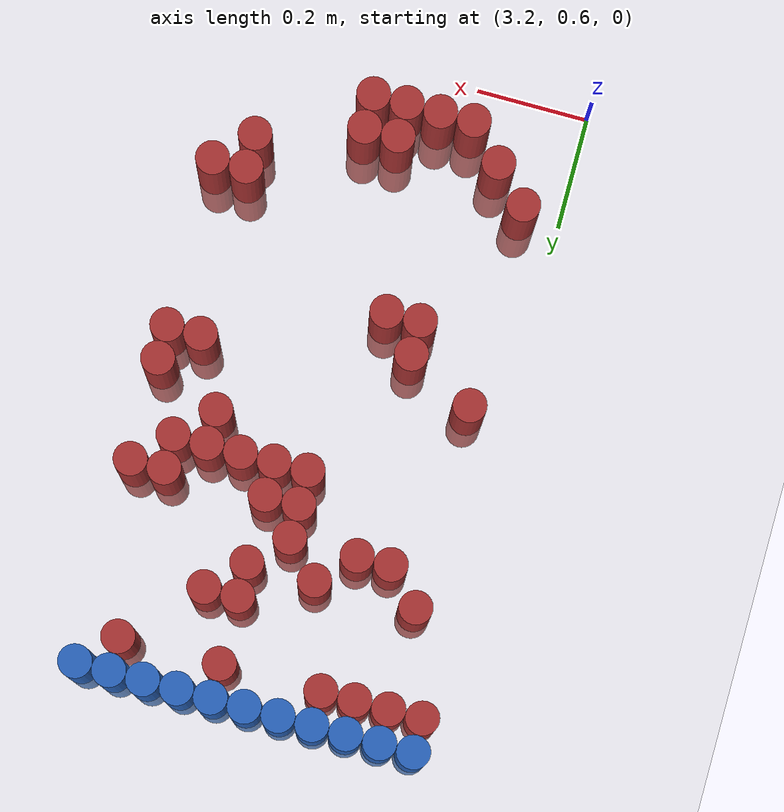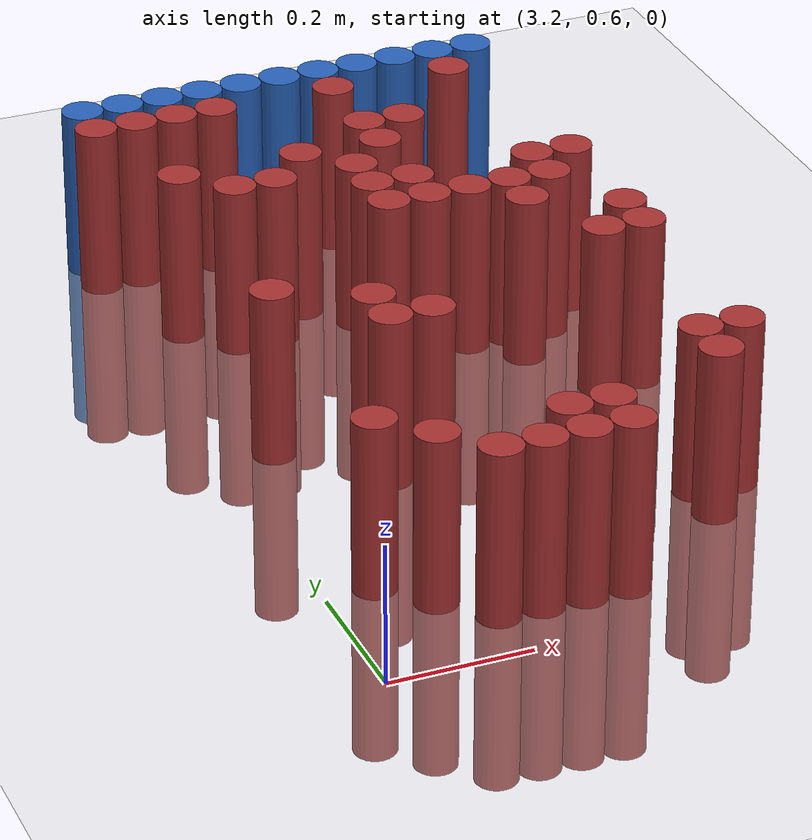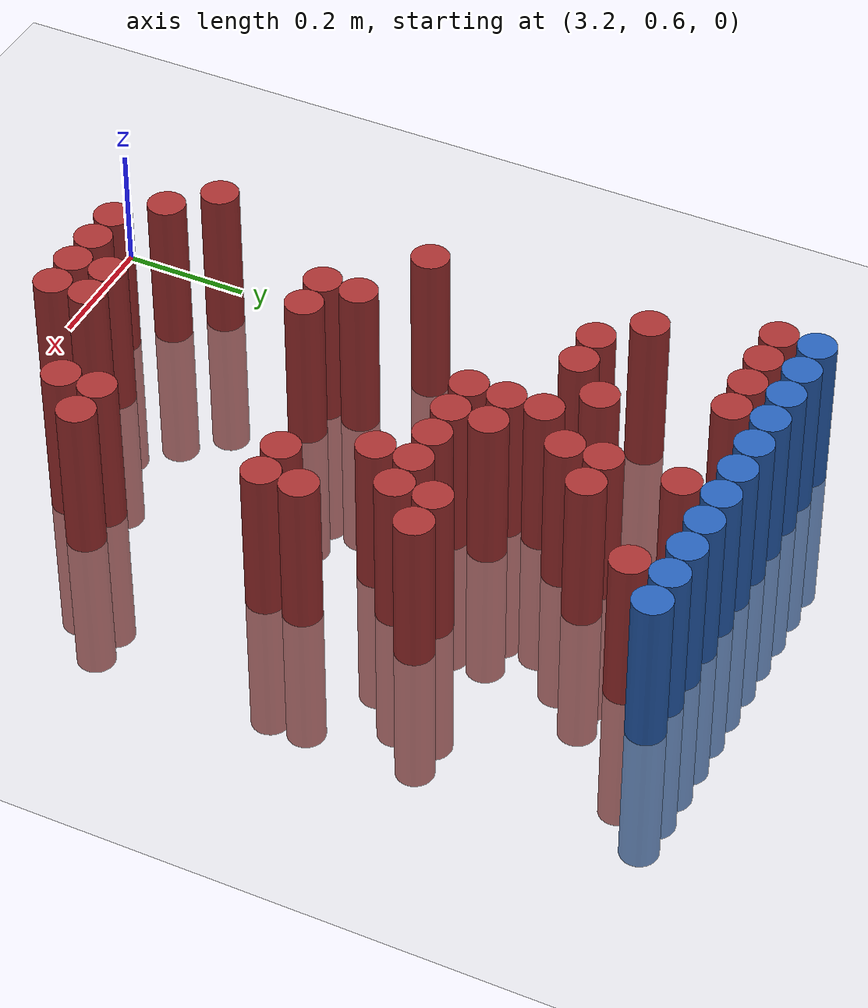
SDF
<sdf version="1.6">
 <world name="default">
  <model name="ground_plane">
   <static>1</static>
   <link name="link">
    <collision name="collision">
     <geometry><plane><normal>0 0 1</normal><size>100 100</size></plane></geometry>
     <surface><friction><ode><mu>100</mu><mu2>50</mu2></ode></friction></surface>
    </collision>
    <visual name="visual">
     <cast_shadows>0</cast_shadows>
     <geometry><plane><normal>0 0 1</normal><size>100 100</size></plane></geometry>
     <material>
      <script><uri>file://media/materials/scripts/gazebo.material</uri><name>Gazebo/Grey</name></script>
     </material>
    </visual>
   </link>
  </model>
  <model name="unit_cylinder_114">
   <static>1</static>
   <pose>3.210000 1.770000 0.000000 0.000000 0.000000 0.000000</pose>
   <link name="link">
    <inertial>
     <mass>1</mass>
     <inertia><ixx>0.145833</ixx><ixy>0</ixy><ixz>0</ixz><iyy>0.145833</iyy><iyz>0</iyz><izz>0.125</izz></inertia>
    </inertial>
    <collision name="collision">
     <geometry><cylinder><radius>0.030000</radius><length>0.5</length></cylinder></geometry>
    </collision>
    <visual name="visual">
     <geometry><cylinder><radius>0.030000</radius><length>0.5</length></cylinder></geometry>
     <material>
      <ambient>0.152000 0.379000 0.720000 1</ambient>
      <diffuse>0.152000 0.379000 0.720000 1</diffuse>
     </material>
     <material>
      <script><name>Gazebo/Grey</name><uri>file://media/materials/scripts/gazebo.material</uri></script>
     </material>
    </visual>
   </link>
  </model>
  <model name="unit_cylinder_115">
   <static>1</static>
   <pose>3.270000 1.770000 0.000000 0.000000 0.000000 0.000000</pose>
   <link name="link">
    <inertial>
     <mass>1</mass>
     <inertia><ixx>0.145833</ixx><ixy>0</ixy><ixz>0</ixz><iyy>0.145833</iyy><iyz>0</iyz><izz>0.125</izz></inertia>
    </inertial>
    <collision name="collision">
     <geometry><cylinder><radius>0.030000</radius><length>0.5</length></cylinder></geometry>
    </collision>
    <visual name="visual">
     <geometry><cylinder><radius>0.030000</radius><length>0.5</length></cylinder></geometry>
     <material>
      <ambient>0.152000 0.379000 0.720000 1</ambient>
      <diffuse>0.152000 0.379000 0.720000 1</diffuse>
     </material>
     <material>
      <script><name>Gazebo/Grey</name><uri>file://media/materials/scripts/gazebo.material</uri></script>
     </material>
    </visual>
   </link>
  </model>
  <model name="unit_cylinder_116">
   <static>1</static>
   <pose>3.330000 1.770000 0.000000 0.000000 0.000000 0.000000</pose>
   <link name="link">
    <inertial>
     <mass>1</mass>
     <inertia><ixx>0.145833</ixx><ixy>0</ixy><ixz>0</ixz><iyy>0.145833</iyy><iyz>0</iyz><izz>0.125</izz></inertia>
    </inertial>
    <collision name="collision">
     <geometry><cylinder><radius>0.030000</radius><length>0.5</length></cylinder></geometry>
    </collision>
    <visual name="visual">
     <geometry><cylinder><radius>0.030000</radius><length>0.5</length></cylinder></geometry>
     <material>
      <ambient>0.152000 0.379000 0.720000 1</ambient>
      <diffuse>0.152000 0.379000 0.720000 1</diffuse>
     </material>
     <material>
      <script><name>Gazebo/Grey</name><uri>file://media/materials/scripts/gazebo.material</uri></script>
     </material>
    </visual>
   </link>
  </model>
  <model name="unit_cylinder_117">
   <static>1</static>
   <pose>3.390000 1.770000 0.000000 0.000000 0.000000 0.000000</pose>
   <link name="link">
    <inertial>
     <mass>1</mass>
     <inertia><ixx>0.145833</ixx><ixy>0</ixy><ixz>0</ixz><iyy>0.145833</iyy><iyz>0</iyz><izz>0.125</izz></inertia>
    </inertial>
    <collision name="collision">
     <geometry><cylinder><radius>0.030000</radius><length>0.5</length></cylinder></geometry>
    </collision>
    <visual name="visual">
     <geometry><cylinder><radius>0.030000</radius><length>0.5</length></cylinder></geometry>
     <material>
      <ambient>0.152000 0.379000 0.720000 1</ambient>
      <diffuse>0.152000 0.379000 0.720000 1</diffuse>
     </material>
     <material>
      <script><name>Gazebo/Grey</name><uri>file://media/materials/scripts/gazebo.material</uri></script>
     </material>
    </visual>
   </link>
  </model>
  <model name="unit_cylinder_118">
   <static>1</static>
   <pose>3.450000 1.770000 0.000000 0.000000 0.000000 0.000000</pose>
   <link name="link">
    <inertial>
     <mass>1</mass>
     <inertia><ixx>0.145833</ixx><ixy>0</ixy><ixz>0</ixz><iyy>0.145833</iyy><iyz>0</iyz><izz>0.125</izz></inertia>
    </inertial>
    <collision name="collision">
     <geometry><cylinder><radius>0.030000</radius><length>0.5</length></cylinder></geometry>
    </collision>
    <visual name="visual">
     <geometry><cylinder><radius>0.030000</radius><length>0.5</length></cylinder></geometry>
     <material>
      <ambient>0.152000 0.379000 0.720000 1</ambient>
      <diffuse>0.152000 0.379000 0.720000 1</diffuse>
     </material>
     <material>
      <script><name>Gazebo/Grey</name><uri>file://media/materials/scripts/gazebo.material</uri></script>
     </material>
    </visual>
   </link>
  </model>
  <model name="unit_cylinder_119">
   <static>1</static>
   <pose>3.510000 1.770000 0.000000 0.000000 0.000000 0.000000</pose>
   <link name="link">
    <inertial>
     <mass>1</mass>
     <inertia><ixx>0.145833</ixx><ixy>0</ixy><ixz>0</ixz><iyy>0.145833</iyy><iyz>0</iyz><izz>0.125</izz></inertia>
    </inertial>
    <collision name="collision">
     <geometry><cylinder><radius>0.030000</radius><length>0.5</length></cylinder></geometry>
    </collision>
    <visual name="visual">
     <geometry><cylinder><radius>0.030000</radius><length>0.5</length></cylinder></geometry>
     <material>
      <ambient>0.152000 0.379000 0.720000 1</ambient>
      <diffuse>0.152000 0.379000 0.720000 1</diffuse>
     </material>
     <material>
      <script><name>Gazebo/Grey</name><uri>file://media/materials/scripts/gazebo.material</uri></script>
     </material>
    </visual>
   </link>
  </model>
  <model name="unit_cylinder_120">
   <static>1</static>
   <pose>3.570000 1.770000 0.000000 0.000000 0.000000 0.000000</pose>
   <link name="link">
    <inertial>
     <mass>1</mass>
     <inertia><ixx>0.145833</ixx><ixy>0</ixy><ixz>0</ixz><iyy>0.145833</iyy><iyz>0</iyz><izz>0.125</izz></inertia>
    </inertial>
    <collision name="collision">
     <geometry><cylinder><radius>0.030000</radius><length>0.5</length></cylinder></geometry>
    </collision>
    <visual name="visual">
     <geometry><cylinder><radius>0.030000</radius><length>0.5</length></cylinder></geometry>
     <material>
      <ambient>0.152000 0.379000 0.720000 1</ambient>
      <diffuse>0.152000 0.379000 0.720000 1</diffuse>
     </material>
     <material>
      <script><name>Gazebo/Grey</name><uri>file://media/materials/scripts/gazebo.material</uri></script>
     </material>
    </visual>
   </link>
  </model>
  <model name="unit_cylinder_121">
   <static>1</static>
   <pose>3.630000 1.770000 0.000000 0.000000 0.000000 0.000000</pose>
   <link name="link">
    <inertial>
     <mass>1</mass>
     <inertia><ixx>0.145833</ixx><ixy>0</ixy><ixz>0</ixz><iyy>0.145833</iyy><iyz>0</iyz><izz>0.125</izz></inertia>
    </inertial>
    <collision name="collision">
     <geometry><cylinder><radius>0.030000</radius><length>0.5</length></cylinder></geometry>
    </collision>
    <visual name="visual">
     <geometry><cylinder><radius>0.030000</radius><length>0.5</length></cylinder></geometry>
     <material>
      <ambient>0.152000 0.379000 0.720000 1</ambient>
      <diffuse>0.152000 0.379000 0.720000 1</diffuse>
     </material>
     <material>
      <script><name>Gazebo/Grey</name><uri>file://media/materials/scripts/gazebo.material</uri></script>
     </material>
    </visual>
   </link>
  </model>
  <model name="unit_cylinder_122">
   <static>1</static>
   <pose>3.690000 1.770000 0.000000 0.000000 0.000000 0.000000</pose>
   <link name="link">
    <inertial>
     <mass>1</mass>
     <inertia><ixx>0.145833</ixx><ixy>0</ixy><ixz>0</ixz><iyy>0.145833</iyy><iyz>0</iyz><izz>0.125</izz></inertia>
    </inertial>
    <collision name="collision">
     <geometry><cylinder><radius>0.030000</radius><length>0.5</length></cylinder></geometry>
    </collision>
    <visual name="visual">
     <geometry><cylinder><radius>0.030000</radius><length>0.5</length></cylinder></geometry>
     <material>
      <ambient>0.152000 0.379000 0.720000 1</ambient>
      <diffuse>0.152000 0.379000 0.720000 1</diffuse>
     </material>
     <material>
      <script><name>Gazebo/Grey</name><uri>file://media/materials/scripts/gazebo.material</uri></script>
     </material>
    </visual>
   </link>
  </model>
  <model name="unit_cylinder_123">
   <static>1</static>
   <pose>3.750000 1.770000 0.000000 0.000000 0.000000 0.000000</pose>
   <link name="link">
    <inertial>
     <mass>1</mass>
     <inertia><ixx>0.145833</ixx><ixy>0</ixy><ixz>0</ixz><iyy>0.145833</iyy><iyz>0</iyz><izz>0.125</izz></inertia>
    </inertial>
    <collision name="collision">
     <geometry><cylinder><radius>0.030000</radius><length>0.5</length></cylinder></geometry>
    </collision>
    <visual name="visual">
     <geometry><cylinder><radius>0.030000</radius><length>0.5</length></cylinder></geometry>
     <material>
      <ambient>0.152000 0.379000 0.720000 1</ambient>
      <diffuse>0.152000 0.379000 0.720000 1</diffuse>
     </material>
     <material>
      <script><name>Gazebo/Grey</name><uri>file://media/materials/scripts/gazebo.material</uri></script>
     </material>
    </visual>
   </link>
  </model>
  <model name="unit_cylinder_124">
   <static>1</static>
   <pose>3.810000 1.770000 0.000000 0.000000 0.000000 0.000000</pose>
   <link name="link">
    <inertial>
     <mass>1</mass>
     <inertia><ixx>0.145833</ixx><ixy>0</ixy><ixz>0</ixz><iyy>0.145833</iyy><iyz>0</iyz><izz>0.125</izz></inertia>
    </inertial>
    <collision name="collision">
     <geometry><cylinder><radius>0.030000</radius><length>0.5</length></cylinder></geometry>
    </collision>
    <visual name="visual">
     <geometry><cylinder><radius>0.030000</radius><length>0.5</length></cylinder></geometry>
     <material>
      <ambient>0.152000 0.379000 0.720000 1</ambient>
      <diffuse>0.152000 0.379000 0.720000 1</diffuse>
     </material>
     <material>
      <script><name>Gazebo/Grey</name><uri>file://media/materials/scripts/gazebo.material</uri></script>
     </material>
    </visual>
   </link>
  </model>
  <model name="unit_cylinder_132">
   <static>1</static>
   <pose>3.210000 1.710000 0.000000 0.000000 0.000000 0.000000</pose>
   <link name="link">
    <inertial>
     <mass>1</mass>
     <inertia><ixx>0.145833</ixx><ixy>0</ixy><ixz>0</ixz><iyy>0.145833</iyy><iyz>0</iyz><izz>0.125</izz></inertia>
    </inertial>
    <collision name="collision">
     <geometry><cylinder><radius>0.030000</radius><length>0.5</length></cylinder></geometry>
    </collision>
    <visual name="visual">
     <geometry><cylinder><radius>0.030000</radius><length>0.5</length></cylinder></geometry>
     <material>
      <ambient>0.648000 0.192000 0.192000 1</ambient>
      <diffuse>0.648000 0.192000 0.192000 1</diffuse>
     </material>
     <material>
      <script><name>Gazebo/Grey</name><uri>file://media/materials/scripts/gazebo.material</uri></script>
     </material>
    </visual>
   </link>
  </model>
  <model name="unit_cylinder_133">
   <static>1</static>
   <pose>3.270000 1.710000 0.000000 0.000000 0.000000 0.000000</pose>
   <link name="link">
    <inertial>
     <mass>1</mass>
     <inertia><ixx>0.145833</ixx><ixy>0</ixy><ixz>0</ixz><iyy>0.145833</iyy><iyz>0</iyz><izz>0.125</izz></inertia>
    </inertial>
    <collision name="collision">
     <geometry><cylinder><radius>0.030000</radius><length>0.5</length></cylinder></geometry>
    </collision>
    <visual name="visual">
     <geometry><cylinder><radius>0.030000</radius><length>0.5</length></cylinder></geometry>
     <material>
      <ambient>0.648000 0.192000 0.192000 1</ambient>
      <diffuse>0.648000 0.192000 0.192000 1</diffuse>
     </material>
     <material>
      <script><name>Gazebo/Grey</name><uri>file://media/materials/scripts/gazebo.material</uri></script>
     </material>
    </visual>
   </link>
  </model>
  <model name="unit_cylinder_134">
   <static>1</static>
   <pose>3.330000 1.710000 0.000000 0.000000 0.000000 0.000000</pose>
   <link name="link">
    <inertial>
     <mass>1</mass>
     <inertia><ixx>0.145833</ixx><ixy>0</ixy><ixz>0</ixz><iyy>0.145833</iyy><iyz>0</iyz><izz>0.125</izz></inertia>
    </inertial>
    <collision name="collision">
     <geometry><cylinder><radius>0.030000</radius><length>0.5</length></cylinder></geometry>
    </collision>
    <visual name="visual">
     <geometry><cylinder><radius>0.030000</radius><length>0.5</length></cylinder></geometry>
     <material>
      <ambient>0.648000 0.192000 0.192000 1</ambient>
      <diffuse>0.648000 0.192000 0.192000 1</diffuse>
     </material>
     <material>
      <script><name>Gazebo/Grey</name><uri>file://media/materials/scripts/gazebo.material</uri></script>
     </material>
    </visual>
   </link>
  </model>
  <model name="unit_cylinder_135">
   <static>1</static>
   <pose>3.390000 1.710000 0.000000 0.000000 0.000000 0.000000</pose>
   <link name="link">
    <inertial>
     <mass>1</mass>
     <inertia><ixx>0.145833</ixx><ixy>0</ixy><ixz>0</ixz><iyy>0.145833</iyy><iyz>0</iyz><izz>0.125</izz></inertia>
    </inertial>
    <collision name="collision">
     <geometry><cylinder><radius>0.030000</radius><length>0.5</length></cylinder></geometry>
    </collision>
    <visual name="visual">
     <geometry><cylinder><radius>0.030000</radius><length>0.5</length></cylinder></geometry>
     <material>
      <ambient>0.648000 0.192000 0.192000 1</ambient>
      <diffuse>0.648000 0.192000 0.192000 1</diffuse>
     </material>
     <material>
      <script><name>Gazebo/Grey</name><uri>file://media/materials/scripts/gazebo.material</uri></script>
     </material>
    </visual>
   </link>
  </model>
  <model name="unit_cylinder_136">
   <static>1</static>
   <pose>3.570000 1.710000 0.000000 0.000000 0.000000 0.000000</pose>
   <link name="link">
    <inertial>
     <mass>1</mass>
     <inertia><ixx>0.145833</ixx><ixy>0</ixy><ixz>0</ixz><iyy>0.145833</iyy><iyz>0</iyz><izz>0.125</izz></inertia>
    </inertial>
    <collision name="collision">
     <geometry><cylinder><radius>0.030000</radius><length>0.5</length></cylinder></geometry>
    </collision>
    <visual name="visual">
     <geometry><cylinder><radius>0.030000</radius><length>0.5</length></cylinder></geometry>
     <material>
      <ambient>0.648000 0.192000 0.192000 1</ambient>
      <diffuse>0.648000 0.192000 0.192000 1</diffuse>
     </material>
     <material>
      <script><name>Gazebo/Grey</name><uri>file://media/materials/scripts/gazebo.material</uri></script>
     </material>
    </visual>
   </link>
  </model>
  <model name="unit_cylinder_137">
   <static>1</static>
   <pose>3.750000 1.710000 0.000000 0.000000 0.000000 0.000000</pose>
   <link name="link">
    <inertial>
     <mass>1</mass>
     <inertia><ixx>0.145833</ixx><ixy>0</ixy><ixz>0</ixz><iyy>0.145833</iyy><iyz>0</iyz><izz>0.125</izz></inertia>
    </inertial>
    <collision name="collision">
     <geometry><cylinder><radius>0.030000</radius><length>0.5</length></cylinder></geometry>
    </collision>
    <visual name="visual">
     <geometry><cylinder><radius>0.030000</radius><length>0.5</length></cylinder></geometry>
     <material>
      <ambient>0.648000 0.192000 0.192000 1</ambient>
      <diffuse>0.648000 0.192000 0.192000 1</diffuse>
     </material>
     <material>
      <script><name>Gazebo/Grey</name><uri>file://media/materials/scripts/gazebo.material</uri></script>
     </material>
    </visual>
   </link>
  </model>
  <model name="unit_cylinder_140">
   <static>1</static>
   <pose>3.570000 1.590000 0.000000 0.000000 0.000000 0.000000</pose>
   <link name="link">
    <inertial>
     <mass>1</mass>
     <inertia><ixx>0.145833</ixx><ixy>0</ixy><ixz>0</ixz><iyy>0.145833</iyy><iyz>0</iyz><izz>0.125</izz></inertia>
    </inertial>
    <collision name="collision">
     <geometry><cylinder><radius>0.030000</radius><length>0.5</length></cylinder></geometry>
    </collision>
    <visual name="visual">
     <geometry><cylinder><radius>0.030000</radius><length>0.5</length></cylinder></geometry>
     <material>
      <ambient>0.648000 0.192000 0.192000 1</ambient>
      <diffuse>0.648000 0.192000 0.192000 1</diffuse>
     </material>
     <material>
      <script><name>Gazebo/Grey</name><uri>file://media/materials/scripts/gazebo.material</uri></script>
     </material>
    </visual>
   </link>
  </model>
  <model name="unit_cylinder_141">
   <static>1</static>
   <pose>3.630000 1.590000 0.000000 0.000000 0.000000 0.000000</pose>
   <link name="link">
    <inertial>
     <mass>1</mass>
     <inertia><ixx>0.145833</ixx><ixy>0</ixy><ixz>0</ixz><iyy>0.145833</iyy><iyz>0</iyz><izz>0.125</izz></inertia>
    </inertial>
    <collision name="collision">
     <geometry><cylinder><radius>0.030000</radius><length>0.5</length></cylinder></geometry>
    </collision>
    <visual name="visual">
     <geometry><cylinder><radius>0.030000</radius><length>0.5</length></cylinder></geometry>
     <material>
      <ambient>0.648000 0.192000 0.192000 1</ambient>
      <diffuse>0.648000 0.192000 0.192000 1</diffuse>
     </material>
     <material>
      <script><name>Gazebo/Grey</name><uri>file://media/materials/scripts/gazebo.material</uri></script>
     </material>
    </visual>
   </link>
  </model>
  <model name="unit_cylinder_142">
   <static>1</static>
   <pose>3.270000 1.530000 0.000000 0.000000 0.000000 0.000000</pose>
   <link name="link">
    <inertial>
     <mass>1</mass>
     <inertia><ixx>0.145833</ixx><ixy>0</ixy><ixz>0</ixz><iyy>0.145833</iyy><iyz>0</iyz><izz>0.125</izz></inertia>
    </inertial>
    <collision name="collision">
     <geometry><cylinder><radius>0.030000</radius><length>0.5</length></cylinder></geometry>
    </collision>
    <visual name="visual">
     <geometry><cylinder><radius>0.030000</radius><length>0.5</length></cylinder></geometry>
     <material>
      <ambient>0.648000 0.192000 0.192000 1</ambient>
      <diffuse>0.648000 0.192000 0.192000 1</diffuse>
     </material>
     <material>
      <script><name>Gazebo/Grey</name><uri>file://media/materials/scripts/gazebo.material</uri></script>
     </material>
    </visual>
   </link>
  </model>
  <model name="unit_cylinder_143">
   <static>1</static>
   <pose>3.450000 1.530000 0.000000 0.000000 0.000000 0.000000</pose>
   <link name="link">
    <inertial>
     <mass>1</mass>
     <inertia><ixx>0.145833</ixx><ixy>0</ixy><ixz>0</ixz><iyy>0.145833</iyy><iyz>0</iyz><izz>0.125</izz></inertia>
    </inertial>
    <collision name="collision">
     <geometry><cylinder><radius>0.030000</radius><length>0.5</length></cylinder></geometry>
    </collision>
    <visual name="visual">
     <geometry><cylinder><radius>0.030000</radius><length>0.5</length></cylinder></geometry>
     <material>
      <ambient>0.648000 0.192000 0.192000 1</ambient>
      <diffuse>0.648000 0.192000 0.192000 1</diffuse>
     </material>
     <material>
      <script><name>Gazebo/Grey</name><uri>file://media/materials/scripts/gazebo.material</uri></script>
     </material>
    </visual>
   </link>
  </model>
  <model name="unit_cylinder_144">
   <static>1</static>
   <pose>3.570000 1.530000 0.000000 0.000000 0.000000 0.000000</pose>
   <link name="link">
    <inertial>
     <mass>1</mass>
     <inertia><ixx>0.145833</ixx><ixy>0</ixy><ixz>0</ixz><iyy>0.145833</iyy><iyz>0</iyz><izz>0.125</izz></inertia>
    </inertial>
    <collision name="collision">
     <geometry><cylinder><radius>0.030000</radius><length>0.5</length></cylinder></geometry>
    </collision>
    <visual name="visual">
     <geometry><cylinder><radius>0.030000</radius><length>0.5</length></cylinder></geometry>
     <material>
      <ambient>0.648000 0.192000 0.192000 1</ambient>
      <diffuse>0.648000 0.192000 0.192000 1</diffuse>
     </material>
     <material>
      <script><name>Gazebo/Grey</name><uri>file://media/materials/scripts/gazebo.material</uri></script>
     </material>
    </visual>
   </link>
  </model>
  <model name="unit_cylinder_147">
   <static>1</static>
   <pose>3.330000 1.470000 0.000000 0.000000 0.000000 0.000000</pose>
   <link name="link">
    <inertial>
     <mass>1</mass>
     <inertia><ixx>0.145833</ixx><ixy>0</ixy><ixz>0</ixz><iyy>0.145833</iyy><iyz>0</iyz><izz>0.125</izz></inertia>
    </inertial>
    <collision name="collision">
     <geometry><cylinder><radius>0.030000</radius><length>0.5</length></cylinder></geometry>
    </collision>
    <visual name="visual">
     <geometry><cylinder><radius>0.030000</radius><length>0.5</length></cylinder></geometry>
     <material>
      <ambient>0.648000 0.192000 0.192000 1</ambient>
      <diffuse>0.648000 0.192000 0.192000 1</diffuse>
     </material>
     <material>
      <script><name>Gazebo/Grey</name><uri>file://media/materials/scripts/gazebo.material</uri></script>
     </material>
    </visual>
   </link>
  </model>
  <model name="unit_cylinder_148">
   <static>1</static>
   <pose>3.390000 1.470000 0.000000 0.000000 0.000000 0.000000</pose>
   <link name="link">
    <inertial>
     <mass>1</mass>
     <inertia><ixx>0.145833</ixx><ixy>0</ixy><ixz>0</ixz><iyy>0.145833</iyy><iyz>0</iyz><izz>0.125</izz></inertia>
    </inertial>
    <collision name="collision">
     <geometry><cylinder><radius>0.030000</radius><length>0.5</length></cylinder></geometry>
    </collision>
    <visual name="visual">
     <geometry><cylinder><radius>0.030000</radius><length>0.5</length></cylinder></geometry>
     <material>
      <ambient>0.648000 0.192000 0.192000 1</ambient>
      <diffuse>0.648000 0.192000 0.192000 1</diffuse>
     </material>
     <material>
      <script><name>Gazebo/Grey</name><uri>file://media/materials/scripts/gazebo.material</uri></script>
     </material>
    </visual>
   </link>
  </model>
  <model name="unit_cylinder_149">
   <static>1</static>
   <pose>3.510000 1.470000 0.000000 0.000000 0.000000 0.000000</pose>
   <link name="link">
    <inertial>
     <mass>1</mass>
     <inertia><ixx>0.145833</ixx><ixy>0</ixy><ixz>0</ixz><iyy>0.145833</iyy><iyz>0</iyz><izz>0.125</izz></inertia>
    </inertial>
    <collision name="collision">
     <geometry><cylinder><radius>0.030000</radius><length>0.5</length></cylinder></geometry>
    </collision>
    <visual name="visual">
     <geometry><cylinder><radius>0.030000</radius><length>0.5</length></cylinder></geometry>
     <material>
      <ambient>0.648000 0.192000 0.192000 1</ambient>
      <diffuse>0.648000 0.192000 0.192000 1</diffuse>
     </material>
     <material>
      <script><name>Gazebo/Grey</name><uri>file://media/materials/scripts/gazebo.material</uri></script>
     </material>
    </visual>
   </link>
  </model>
  <model name="unit_cylinder_151">
   <static>1</static>
   <pose>3.510000 1.410000 0.000000 0.000000 0.000000 0.000000</pose>
   <link name="link">
    <inertial>
     <mass>1</mass>
     <inertia><ixx>0.145833</ixx><ixy>0</ixy><ixz>0</ixz><iyy>0.145833</iyy><iyz>0</iyz><izz>0.125</izz></inertia>
    </inertial>
    <collision name="collision">
     <geometry><cylinder><radius>0.030000</radius><length>0.5</length></cylinder></geometry>
    </collision>
    <visual name="visual">
     <geometry><cylinder><radius>0.030000</radius><length>0.5</length></cylinder></geometry>
     <material>
      <ambient>0.648000 0.192000 0.192000 1</ambient>
      <diffuse>0.648000 0.192000 0.192000 1</diffuse>
     </material>
     <material>
      <script><name>Gazebo/Grey</name><uri>file://media/materials/scripts/gazebo.material</uri></script>
     </material>
    </visual>
   </link>
  </model>
  <model name="unit_cylinder_152">
   <static>1</static>
   <pose>3.570000 1.410000 0.000000 0.000000 0.000000 0.000000</pose>
   <link name="link">
    <inertial>
     <mass>1</mass>
     <inertia><ixx>0.145833</ixx><ixy>0</ixy><ixz>0</ixz><iyy>0.145833</iyy><iyz>0</iyz><izz>0.125</izz></inertia>
    </inertial>
    <collision name="collision">
     <geometry><cylinder><radius>0.030000</radius><length>0.5</length></cylinder></geometry>
    </collision>
    <visual name="visual">
     <geometry><cylinder><radius>0.030000</radius><length>0.5</length></cylinder></geometry>
     <material>
      <ambient>0.648000 0.192000 0.192000 1</ambient>
      <diffuse>0.648000 0.192000 0.192000 1</diffuse>
     </material>
     <material>
      <script><name>Gazebo/Grey</name><uri>file://media/materials/scripts/gazebo.material</uri></script>
     </material>
    </visual>
   </link>
  </model>
  <model name="unit_cylinder_153">
   <static>1</static>
   <pose>3.750000 1.410000 0.000000 0.000000 0.000000 0.000000</pose>
   <link name="link">
    <inertial>
     <mass>1</mass>
     <inertia><ixx>0.145833</ixx><ixy>0</ixy><ixz>0</ixz><iyy>0.145833</iyy><iyz>0</iyz><izz>0.125</izz></inertia>
    </inertial>
    <collision name="collision">
     <geometry><cylinder><radius>0.030000</radius><length>0.5</length></cylinder></geometry>
    </collision>
    <visual name="visual">
     <geometry><cylinder><radius>0.030000</radius><length>0.5</length></cylinder></geometry>
     <material>
      <ambient>0.648000 0.192000 0.192000 1</ambient>
      <diffuse>0.648000 0.192000 0.192000 1</diffuse>
     </material>
     <material>
      <script><name>Gazebo/Grey</name><uri>file://media/materials/scripts/gazebo.material</uri></script>
     </material>
    </visual>
   </link>
  </model>
  <model name="unit_cylinder_154">
   <static>1</static>
   <pose>3.810000 1.410000 0.000000 0.000000 0.000000 0.000000</pose>
   <link name="link">
    <inertial>
     <mass>1</mass>
     <inertia><ixx>0.145833</ixx><ixy>0</ixy><ixz>0</ixz><iyy>0.145833</iyy><iyz>0</iyz><izz>0.125</izz></inertia>
    </inertial>
    <collision name="collision">
     <geometry><cylinder><radius>0.030000</radius><length>0.5</length></cylinder></geometry>
    </collision>
    <visual name="visual">
     <geometry><cylinder><radius>0.030000</radius><length>0.5</length></cylinder></geometry>
     <material>
      <ambient>0.648000 0.192000 0.192000 1</ambient>
      <diffuse>0.648000 0.192000 0.192000 1</diffuse>
     </material>
     <material>
      <script><name>Gazebo/Grey</name><uri>file://media/materials/scripts/gazebo.material</uri></script>
     </material>
    </visual>
   </link>
  </model>
  <model name="unit_cylinder_156">
   <static>1</static>
   <pose>3.510000 1.350000 0.000000 0.000000 0.000000 0.000000</pose>
   <link name="link">
    <inertial>
     <mass>1</mass>
     <inertia><ixx>0.145833</ixx><ixy>0</ixy><ixz>0</ixz><iyy>0.145833</iyy><iyz>0</iyz><izz>0.125</izz></inertia>
    </inertial>
    <collision name="collision">
     <geometry><cylinder><radius>0.030000</radius><length>0.5</length></cylinder></geometry>
    </collision>
    <visual name="visual">
     <geometry><cylinder><radius>0.030000</radius><length>0.5</length></cylinder></geometry>
     <material>
      <ambient>0.648000 0.192000 0.192000 1</ambient>
      <diffuse>0.648000 0.192000 0.192000 1</diffuse>
     </material>
     <material>
      <script><name>Gazebo/Grey</name><uri>file://media/materials/scripts/gazebo.material</uri></script>
     </material>
    </visual>
   </link>
  </model>
  <model name="unit_cylinder_157">
   <static>1</static>
   <pose>3.570000 1.350000 0.000000 0.000000 0.000000 0.000000</pose>
   <link name="link">
    <inertial>
     <mass>1</mass>
     <inertia><ixx>0.145833</ixx><ixy>0</ixy><ixz>0</ixz><iyy>0.145833</iyy><iyz>0</iyz><izz>0.125</izz></inertia>
    </inertial>
    <collision name="collision">
     <geometry><cylinder><radius>0.030000</radius><length>0.5</length></cylinder></geometry>
    </collision>
    <visual name="visual">
     <geometry><cylinder><radius>0.030000</radius><length>0.5</length></cylinder></geometry>
     <material>
      <ambient>0.648000 0.192000 0.192000 1</ambient>
      <diffuse>0.648000 0.192000 0.192000 1</diffuse>
     </material>
     <material>
      <script><name>Gazebo/Grey</name><uri>file://media/materials/scripts/gazebo.material</uri></script>
     </material>
    </visual>
   </link>
  </model>
  <model name="unit_cylinder_158">
   <static>1</static>
   <pose>3.630000 1.350000 0.000000 0.000000 0.000000 0.000000</pose>
   <link name="link">
    <inertial>
     <mass>1</mass>
     <inertia><ixx>0.145833</ixx><ixy>0</ixy><ixz>0</ixz><iyy>0.145833</iyy><iyz>0</iyz><izz>0.125</izz></inertia>
    </inertial>
    <collision name="collision">
     <geometry><cylinder><radius>0.030000</radius><length>0.5</length></cylinder></geometry>
    </collision>
    <visual name="visual">
     <geometry><cylinder><radius>0.030000</radius><length>0.5</length></cylinder></geometry>
     <material>
      <ambient>0.648000 0.192000 0.192000 1</ambient>
      <diffuse>0.648000 0.192000 0.192000 1</diffuse>
     </material>
     <material>
      <script><name>Gazebo/Grey</name><uri>file://media/materials/scripts/gazebo.material</uri></script>
     </material>
    </visual>
   </link>
  </model>
  <model name="unit_cylinder_159">
   <static>1</static>
   <pose>3.690000 1.350000 0.000000 0.000000 0.000000 0.000000</pose>
   <link name="link">
    <inertial>
     <mass>1</mass>
     <inertia><ixx>0.145833</ixx><ixy>0</ixy><ixz>0</ixz><iyy>0.145833</iyy><iyz>0</iyz><izz>0.125</izz></inertia>
    </inertial>
    <collision name="collision">
     <geometry><cylinder><radius>0.030000</radius><length>0.5</length></cylinder></geometry>
    </collision>
    <visual name="visual">
     <geometry><cylinder><radius>0.030000</radius><length>0.5</length></cylinder></geometry>
     <material>
      <ambient>0.648000 0.192000 0.192000 1</ambient>
      <diffuse>0.648000 0.192000 0.192000 1</diffuse>
     </material>
     <material>
      <script><name>Gazebo/Grey</name><uri>file://media/materials/scripts/gazebo.material</uri></script>
     </material>
    </visual>
   </link>
  </model>
  <model name="unit_cylinder_160">
   <static>1</static>
   <pose>3.750000 1.350000 0.000000 0.000000 0.000000 0.000000</pose>
   <link name="link">
    <inertial>
     <mass>1</mass>
     <inertia><ixx>0.145833</ixx><ixy>0</ixy><ixz>0</ixz><iyy>0.145833</iyy><iyz>0</iyz><izz>0.125</izz></inertia>
    </inertial>
    <collision name="collision">
     <geometry><cylinder><radius>0.030000</radius><length>0.5</length></cylinder></geometry>
    </collision>
    <visual name="visual">
     <geometry><cylinder><radius>0.030000</radius><length>0.5</length></cylinder></geometry>
     <material>
      <ambient>0.648000 0.192000 0.192000 1</ambient>
      <diffuse>0.648000 0.192000 0.192000 1</diffuse>
     </material>
     <material>
      <script><name>Gazebo/Grey</name><uri>file://media/materials/scripts/gazebo.material</uri></script>
     </material>
    </visual>
   </link>
  </model>
  <model name="unit_cylinder_162">
   <static>1</static>
   <pose>3.690000 1.290000 0.000000 0.000000 0.000000 0.000000</pose>
   <link name="link">
    <inertial>
     <mass>1</mass>
     <inertia><ixx>0.145833</ixx><ixy>0</ixy><ixz>0</ixz><iyy>0.145833</iyy><iyz>0</iyz><izz>0.125</izz></inertia>
    </inertial>
    <collision name="collision">
     <geometry><cylinder><radius>0.030000</radius><length>0.5</length></cylinder></geometry>
    </collision>
    <visual name="visual">
     <geometry><cylinder><radius>0.030000</radius><length>0.5</length></cylinder></geometry>
     <material>
      <ambient>0.648000 0.192000 0.192000 1</ambient>
      <diffuse>0.648000 0.192000 0.192000 1</diffuse>
     </material>
     <material>
      <script><name>Gazebo/Grey</name><uri>file://media/materials/scripts/gazebo.material</uri></script>
     </material>
    </visual>
   </link>
  </model>
  <model name="unit_cylinder_167">
   <static>1</static>
   <pose>3.810000 1.230000 0.000000 0.000000 0.000000 0.000000</pose>
   <link name="link">
    <inertial>
     <mass>1</mass>
     <inertia><ixx>0.145833</ixx><ixy>0</ixy><ixz>0</ixz><iyy>0.145833</iyy><iyz>0</iyz><izz>0.125</izz></inertia>
    </inertial>
    <collision name="collision">
     <geometry><cylinder><radius>0.030000</radius><length>0.5</length></cylinder></geometry>
    </collision>
    <visual name="visual">
     <geometry><cylinder><radius>0.030000</radius><length>0.5</length></cylinder></geometry>
     <material>
      <ambient>0.648000 0.192000 0.192000 1</ambient>
      <diffuse>0.648000 0.192000 0.192000 1</diffuse>
     </material>
     <material>
      <script><name>Gazebo/Grey</name><uri>file://media/materials/scripts/gazebo.material</uri></script>
     </material>
    </visual>
   </link>
  </model>
  <model name="unit_cylinder_174">
   <static>1</static>
   <pose>3.270000 1.170000 0.000000 0.000000 0.000000 0.000000</pose>
   <link name="link">
    <inertial>
     <mass>1</mass>
     <inertia><ixx>0.145833</ixx><ixy>0</ixy><ixz>0</ixz><iyy>0.145833</iyy><iyz>0</iyz><izz>0.125</izz></inertia>
    </inertial>
    <collision name="collision">
     <geometry><cylinder><radius>0.030000</radius><length>0.5</length></cylinder></geometry>
    </collision>
    <visual name="visual">
     <geometry><cylinder><radius>0.030000</radius><length>0.5</length></cylinder></geometry>
     <material>
      <ambient>0.648000 0.192000 0.192000 1</ambient>
      <diffuse>0.648000 0.192000 0.192000 1</diffuse>
     </material>
     <material>
      <script><name>Gazebo/Grey</name><uri>file://media/materials/scripts/gazebo.material</uri></script>
     </material>
    </visual>
   </link>
  </model>
  <model name="unit_cylinder_175">
   <static>1</static>
   <pose>3.750000 1.170000 0.000000 0.000000 0.000000 0.000000</pose>
   <link name="link">
    <inertial>
     <mass>1</mass>
     <inertia><ixx>0.145833</ixx><ixy>0</ixy><ixz>0</ixz><iyy>0.145833</iyy><iyz>0</iyz><izz>0.125</izz></inertia>
    </inertial>
    <collision name="collision">
     <geometry><cylinder><radius>0.030000</radius><length>0.5</length></cylinder></geometry>
    </collision>
    <visual name="visual">
     <geometry><cylinder><radius>0.030000</radius><length>0.5</length></cylinder></geometry>
     <material>
      <ambient>0.648000 0.192000 0.192000 1</ambient>
      <diffuse>0.648000 0.192000 0.192000 1</diffuse>
     </material>
     <material>
      <script><name>Gazebo/Grey</name><uri>file://media/materials/scripts/gazebo.material</uri></script>
     </material>
    </visual>
   </link>
  </model>
  <model name="unit_cylinder_176">
   <static>1</static>
   <pose>3.810000 1.170000 0.000000 0.000000 0.000000 0.000000</pose>
   <link name="link">
    <inertial>
     <mass>1</mass>
     <inertia><ixx>0.145833</ixx><ixy>0</ixy><ixz>0</ixz><iyy>0.145833</iyy><iyz>0</iyz><izz>0.125</izz></inertia>
    </inertial>
    <collision name="collision">
     <geometry><cylinder><radius>0.030000</radius><length>0.5</length></cylinder></geometry>
    </collision>
    <visual name="visual">
     <geometry><cylinder><radius>0.030000</radius><length>0.5</length></cylinder></geometry>
     <material>
      <ambient>0.648000 0.192000 0.192000 1</ambient>
      <diffuse>0.648000 0.192000 0.192000 1</diffuse>
     </material>
     <material>
      <script><name>Gazebo/Grey</name><uri>file://media/materials/scripts/gazebo.material</uri></script>
     </material>
    </visual>
   </link>
  </model>
  <model name="unit_cylinder_180">
   <static>1</static>
   <pose>3.390000 1.110000 0.000000 0.000000 0.000000 0.000000</pose>
   <link name="link">
    <inertial>
     <mass>1</mass>
     <inertia><ixx>0.145833</ixx><ixy>0</ixy><ixz>0</ixz><iyy>0.145833</iyy><iyz>0</iyz><izz>0.125</izz></inertia>
    </inertial>
    <collision name="collision">
     <geometry><cylinder><radius>0.030000</radius><length>0.5</length></cylinder></geometry>
    </collision>
    <visual name="visual">
     <geometry><cylinder><radius>0.030000</radius><length>0.5</length></cylinder></geometry>
     <material>
      <ambient>0.648000 0.192000 0.192000 1</ambient>
      <diffuse>0.648000 0.192000 0.192000 1</diffuse>
     </material>
     <material>
      <script><name>Gazebo/Grey</name><uri>file://media/materials/scripts/gazebo.material</uri></script>
     </material>
    </visual>
   </link>
  </model>
  <model name="unit_cylinder_183">
   <static>1</static>
   <pose>3.390000 1.050000 0.000000 0.000000 0.000000 0.000000</pose>
   <link name="link">
    <inertial>
     <mass>1</mass>
     <inertia><ixx>0.145833</ixx><ixy>0</ixy><ixz>0</ixz><iyy>0.145833</iyy><iyz>0</iyz><izz>0.125</izz></inertia>
    </inertial>
    <collision name="collision">
     <geometry><cylinder><radius>0.030000</radius><length>0.5</length></cylinder></geometry>
    </collision>
    <visual name="visual">
     <geometry><cylinder><radius>0.030000</radius><length>0.5</length></cylinder></geometry>
     <material>
      <ambient>0.648000 0.192000 0.192000 1</ambient>
      <diffuse>0.648000 0.192000 0.192000 1</diffuse>
     </material>
     <material>
      <script><name>Gazebo/Grey</name><uri>file://media/materials/scripts/gazebo.material</uri></script>
     </material>
    </visual>
   </link>
  </model>
  <model name="unit_cylinder_184">
   <static>1</static>
   <pose>3.450000 1.050000 0.000000 0.000000 0.000000 0.000000</pose>
   <link name="link">
    <inertial>
     <mass>1</mass>
     <inertia><ixx>0.145833</ixx><ixy>0</ixy><ixz>0</ixz><iyy>0.145833</iyy><iyz>0</iyz><izz>0.125</izz></inertia>
    </inertial>
    <collision name="collision">
     <geometry><cylinder><radius>0.030000</radius><length>0.5</length></cylinder></geometry>
    </collision>
    <visual name="visual">
     <geometry><cylinder><radius>0.030000</radius><length>0.5</length></cylinder></geometry>
     <material>
      <ambient>0.648000 0.192000 0.192000 1</ambient>
      <diffuse>0.648000 0.192000 0.192000 1</diffuse>
     </material>
     <material>
      <script><name>Gazebo/Grey</name><uri>file://media/materials/scripts/gazebo.material</uri></script>
     </material>
    </visual>
   </link>
  </model>
  <model name="unit_cylinder_188">
   <static>1</static>
   <pose>3.750000 0.870000 0.000000 0.000000 0.000000 0.000000</pose>
   <link name="link">
    <inertial>
     <mass>1</mass>
     <inertia><ixx>0.145833</ixx><ixy>0</ixy><ixz>0</ixz><iyy>0.145833</iyy><iyz>0</iyz><izz>0.125</izz></inertia>
    </inertial>
    <collision name="collision">
     <geometry><cylinder><radius>0.030000</radius><length>0.5</length></cylinder></geometry>
    </collision>
    <visual name="visual">
     <geometry><cylinder><radius>0.030000</radius><length>0.5</length></cylinder></geometry>
     <material>
      <ambient>0.648000 0.192000 0.192000 1</ambient>
      <diffuse>0.648000 0.192000 0.192000 1</diffuse>
     </material>
     <material>
      <script><name>Gazebo/Grey</name><uri>file://media/materials/scripts/gazebo.material</uri></script>
     </material>
    </visual>
   </link>
  </model>
  <model name="unit_cylinder_189">
   <static>1</static>
   <pose>3.810000 0.870000 0.000000 0.000000 0.000000 0.000000</pose>
   <link name="link">
    <inertial>
     <mass>1</mass>
     <inertia><ixx>0.145833</ixx><ixy>0</ixy><ixz>0</ixz><iyy>0.145833</iyy><iyz>0</iyz><izz>0.125</izz></inertia>
    </inertial>
    <collision name="collision">
     <geometry><cylinder><radius>0.030000</radius><length>0.5</length></cylinder></geometry>
    </collision>
    <visual name="visual">
     <geometry><cylinder><radius>0.030000</radius><length>0.5</length></cylinder></geometry>
     <material>
      <ambient>0.648000 0.192000 0.192000 1</ambient>
      <diffuse>0.648000 0.192000 0.192000 1</diffuse>
     </material>
     <material>
      <script><name>Gazebo/Grey</name><uri>file://media/materials/scripts/gazebo.material</uri></script>
     </material>
    </visual>
   </link>
  </model>
  <model name="unit_cylinder_191">
   <static>1</static>
   <pose>3.270000 0.810000 0.000000 0.000000 0.000000 0.000000</pose>
   <link name="link">
    <inertial>
     <mass>1</mass>
     <inertia><ixx>0.145833</ixx><ixy>0</ixy><ixz>0</ixz><iyy>0.145833</iyy><iyz>0</iyz><izz>0.125</izz></inertia>
    </inertial>
    <collision name="collision">
     <geometry><cylinder><radius>0.030000</radius><length>0.5</length></cylinder></geometry>
    </collision>
    <visual name="visual">
     <geometry><cylinder><radius>0.030000</radius><length>0.5</length></cylinder></geometry>
     <material>
      <ambient>0.648000 0.192000 0.192000 1</ambient>
      <diffuse>0.648000 0.192000 0.192000 1</diffuse>
     </material>
     <material>
      <script><name>Gazebo/Grey</name><uri>file://media/materials/scripts/gazebo.material</uri></script>
     </material>
    </visual>
   </link>
  </model>
  <model name="unit_cylinder_192">
   <static>1</static>
   <pose>3.750000 0.810000 0.000000 0.000000 0.000000 0.000000</pose>
   <link name="link">
    <inertial>
     <mass>1</mass>
     <inertia><ixx>0.145833</ixx><ixy>0</ixy><ixz>0</ixz><iyy>0.145833</iyy><iyz>0</iyz><izz>0.125</izz></inertia>
    </inertial>
    <collision name="collision">
     <geometry><cylinder><radius>0.030000</radius><length>0.5</length></cylinder></geometry>
    </collision>
    <visual name="visual">
     <geometry><cylinder><radius>0.030000</radius><length>0.5</length></cylinder></geometry>
     <material>
      <ambient>0.648000 0.192000 0.192000 1</ambient>
      <diffuse>0.648000 0.192000 0.192000 1</diffuse>
     </material>
     <material>
      <script><name>Gazebo/Grey</name><uri>file://media/materials/scripts/gazebo.material</uri></script>
     </material>
    </visual>
   </link>
  </model>
  <model name="unit_cylinder_195">
   <static>1</static>
   <pose>3.330000 0.750000 0.000000 0.000000 0.000000 0.000000</pose>
   <link name="link">
    <inertial>
     <mass>1</mass>
     <inertia><ixx>0.145833</ixx><ixy>0</ixy><ixz>0</ixz><iyy>0.145833</iyy><iyz>0</iyz><izz>0.125</izz></inertia>
    </inertial>
    <collision name="collision">
     <geometry><cylinder><radius>0.030000</radius><length>0.5</length></cylinder></geometry>
    </collision>
    <visual name="visual">
     <geometry><cylinder><radius>0.030000</radius><length>0.5</length></cylinder></geometry>
     <material>
      <ambient>0.648000 0.192000 0.192000 1</ambient>
      <diffuse>0.648000 0.192000 0.192000 1</diffuse>
     </material>
     <material>
      <script><name>Gazebo/Grey</name><uri>file://media/materials/scripts/gazebo.material</uri></script>
     </material>
    </visual>
   </link>
  </model>
  <model name="unit_cylinder_196">
   <static>1</static>
   <pose>3.510000 0.750000 0.000000 0.000000 0.000000 0.000000</pose>
   <link name="link">
    <inertial>
     <mass>1</mass>
     <inertia><ixx>0.145833</ixx><ixy>0</ixy><ixz>0</ixz><iyy>0.145833</iyy><iyz>0</iyz><izz>0.125</izz></inertia>
    </inertial>
    <collision name="collision">
     <geometry><cylinder><radius>0.030000</radius><length>0.5</length></cylinder></geometry>
    </collision>
    <visual name="visual">
     <geometry><cylinder><radius>0.030000</radius><length>0.5</length></cylinder></geometry>
     <material>
      <ambient>0.648000 0.192000 0.192000 1</ambient>
      <diffuse>0.648000 0.192000 0.192000 1</diffuse>
     </material>
     <material>
      <script><name>Gazebo/Grey</name><uri>file://media/materials/scripts/gazebo.material</uri></script>
     </material>
    </visual>
   </link>
  </model>
  <model name="unit_cylinder_197">
   <static>1</static>
   <pose>3.570000 0.750000 0.000000 0.000000 0.000000 0.000000</pose>
   <link name="link">
    <inertial>
     <mass>1</mass>
     <inertia><ixx>0.145833</ixx><ixy>0</ixy><ixz>0</ixz><iyy>0.145833</iyy><iyz>0</iyz><izz>0.125</izz></inertia>
    </inertial>
    <collision name="collision">
     <geometry><cylinder><radius>0.030000</radius><length>0.5</length></cylinder></geometry>
    </collision>
    <visual name="visual">
     <geometry><cylinder><radius>0.030000</radius><length>0.5</length></cylinder></geometry>
     <material>
      <ambient>0.648000 0.192000 0.192000 1</ambient>
      <diffuse>0.648000 0.192000 0.192000 1</diffuse>
     </material>
     <material>
      <script><name>Gazebo/Grey</name><uri>file://media/materials/scripts/gazebo.material</uri></script>
     </material>
    </visual>
   </link>
  </model>
  <model name="unit_cylinder_200">
   <static>1</static>
   <pose>3.390000 0.690000 0.000000 0.000000 0.000000 0.000000</pose>
   <link name="link">
    <inertial>
     <mass>1</mass>
     <inertia><ixx>0.145833</ixx><ixy>0</ixy><ixz>0</ixz><iyy>0.145833</iyy><iyz>0</iyz><izz>0.125</izz></inertia>
    </inertial>
    <collision name="collision">
     <geometry><cylinder><radius>0.030000</radius><length>0.5</length></cylinder></geometry>
    </collision>
    <visual name="visual">
     <geometry><cylinder><radius>0.030000</radius><length>0.5</length></cylinder></geometry>
     <material>
      <ambient>0.648000 0.192000 0.192000 1</ambient>
      <diffuse>0.648000 0.192000 0.192000 1</diffuse>
     </material>
     <material>
      <script><name>Gazebo/Grey</name><uri>file://media/materials/scripts/gazebo.material</uri></script>
     </material>
    </visual>
   </link>
  </model>
  <model name="unit_cylinder_201">
   <static>1</static>
   <pose>3.450000 0.690000 0.000000 0.000000 0.000000 0.000000</pose>
   <link name="link">
    <inertial>
     <mass>1</mass>
     <inertia><ixx>0.145833</ixx><ixy>0</ixy><ixz>0</ixz><iyy>0.145833</iyy><iyz>0</iyz><izz>0.125</izz></inertia>
    </inertial>
    <collision name="collision">
     <geometry><cylinder><radius>0.030000</radius><length>0.5</length></cylinder></geometry>
    </collision>
    <visual name="visual">
     <geometry><cylinder><radius>0.030000</radius><length>0.5</length></cylinder></geometry>
     <material>
      <ambient>0.648000 0.192000 0.192000 1</ambient>
      <diffuse>0.648000 0.192000 0.192000 1</diffuse>
     </material>
     <material>
      <script><name>Gazebo/Grey</name><uri>file://media/materials/scripts/gazebo.material</uri></script>
     </material>
    </visual>
   </link>
  </model>
  <model name="unit_cylinder_202">
   <static>1</static>
   <pose>3.510000 0.690000 0.000000 0.000000 0.000000 0.000000</pose>
   <link name="link">
    <inertial>
     <mass>1</mass>
     <inertia><ixx>0.145833</ixx><ixy>0</ixy><ixz>0</ixz><iyy>0.145833</iyy><iyz>0</iyz><izz>0.125</izz></inertia>
    </inertial>
    <collision name="collision">
     <geometry><cylinder><radius>0.030000</radius><length>0.5</length></cylinder></geometry>
    </collision>
    <visual name="visual">
     <geometry><cylinder><radius>0.030000</radius><length>0.5</length></cylinder></geometry>
     <material>
      <ambient>0.648000 0.192000 0.192000 1</ambient>
      <diffuse>0.648000 0.192000 0.192000 1</diffuse>
     </material>
     <material>
      <script><name>Gazebo/Grey</name><uri>file://media/materials/scripts/gazebo.material</uri></script>
     </material>
    </visual>
   </link>
  </model>
  <model name="unit_cylinder_203">
   <static>1</static>
   <pose>3.570000 0.690000 0.000000 0.000000 0.000000 0.000000</pose>
   <link name="link">
    <inertial>
     <mass>1</mass>
     <inertia><ixx>0.145833</ixx><ixy>0</ixy><ixz>0</ixz><iyy>0.145833</iyy><iyz>0</iyz><izz>0.125</izz></inertia>
    </inertial>
    <collision name="collision">
     <geometry><cylinder><radius>0.030000</radius><length>0.5</length></cylinder></geometry>
    </collision>
    <visual name="visual">
     <geometry><cylinder><radius>0.030000</radius><length>0.5</length></cylinder></geometry>
     <material>
      <ambient>0.648000 0.192000 0.192000 1</ambient>
      <diffuse>0.648000 0.192000 0.192000 1</diffuse>
     </material>
     <material>
      <script><name>Gazebo/Grey</name><uri>file://media/materials/scripts/gazebo.material</uri></script>
     </material>
    </visual>
   </link>
  </model>
 </world>
</sdf>
